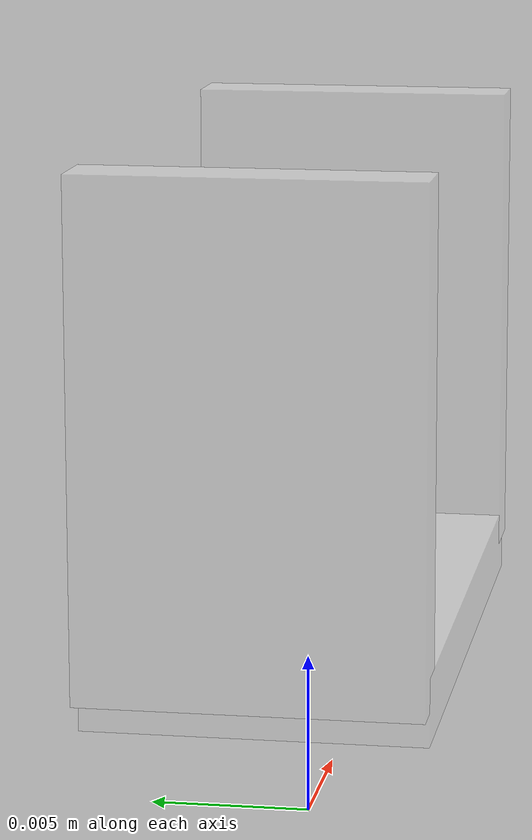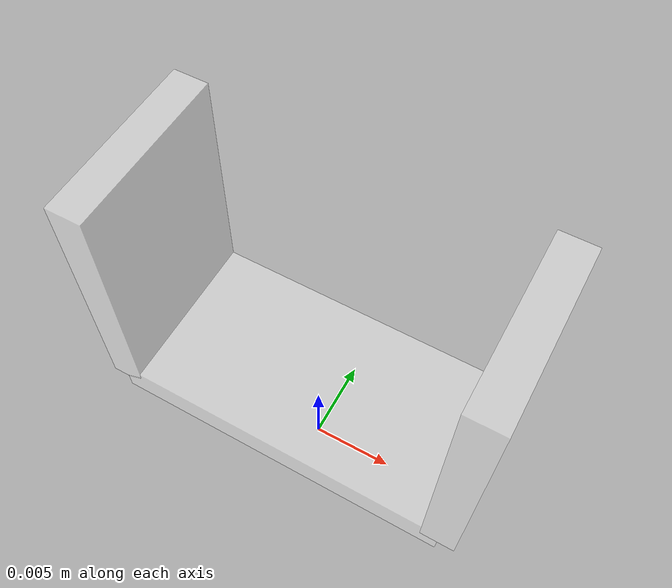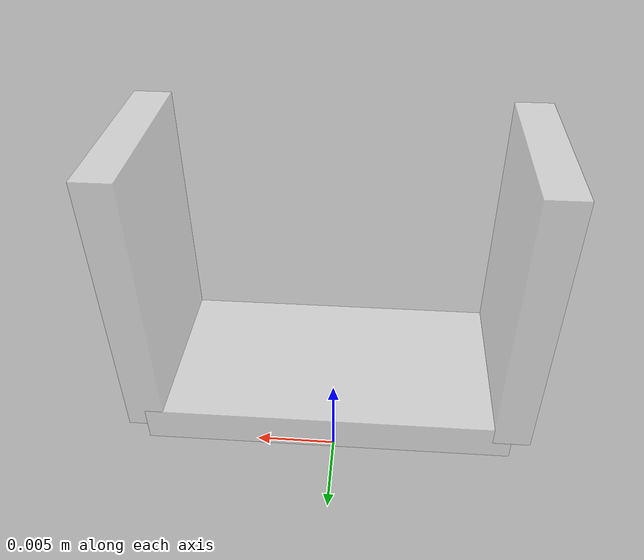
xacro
<?xml version="1.0"?>

<robot xmlns:xacro="http://www.ros.org/wiki/xacro">

  <link name="gripper_base">
    <collision>
      <origin rpy="0 0 0" xyz="0 0 0.0065"/>
      <geometry>
        <box size="0.02 0.01 0.002"/>
      </geometry>
    </collision>
    <visual>
      <origin rpy="0 0 0" xyz="0 0 0.0065"/>
      <geometry>
        <box size="0.02 0.01 0.002"/>
      </geometry>
      <material name="gray">
        <color rgba="1 1 1 0.5"/>
      </material>
    </visual>
    <inertial>
      <origin rpy="0 0 0" xyz="0 0 0"/>
      <mass value="0.2"/>
      <inertia ixx="0.00000173" ixy="0.0" ixz="0.0"
               iyy="0.00000673" iyz="0.0"
               izz="0.00000833"/>
    </inertial>
  </link>

  <link name="finger1">
    <collision>
      <origin rpy="0 0 0" xyz="0.01 0 0.014"/>
      <geometry>
        <box size="0.002 0.01 0.015"/>
      </geometry>
    </collision>
    <visual>
      <origin rpy="0 0 0" xyz="0.01 0 0.014"/>
      <geometry>
        <box size="0.002 0.01 0.015"/>
      </geometry>
      <material name="gray">
        <color rgba="1 1 1 0.5"/>
      </material>
    </visual>
    <inertial>
      <origin rpy="0 0 0" xyz="0 0 0"/>
      <mass value="0.1"/>
      <inertia ixx="0.0000027" ixy="0.0" ixz="0.0"
               iyy="0.000001908" iyz="0.0"
               izz="0.00000086"/>
    </inertial>
  </link>

  <link name="finger2">
    <collision>
      <origin rpy="0 0 0" xyz="-0.01 0 0.014"/>
      <geometry>
        <box size="0.002 0.01 0.015"/>
      </geometry>
    </collision>
    <visual>
      <origin rpy="0 0 0" xyz="-0.01 0 0.014"/>
      <geometry>
        <box size="0.002 0.01 0.015"/>
      </geometry>
      <material name="gray">
        <color rgba="1 1 1 0.5"/>
      </material>
    </visual>
    <inertial>
      <origin rpy="0 0 0" xyz="0 0 0"/>
      <mass value="0.1"/>
      <inertia ixx="0.0000027" ixy="0.0" ixz="0.0"
               iyy="0.000001908" iyz="0.0"
               izz="0.00000086"/>
    </inertial>
  </link>

  <joint name="joint6" type="prismatic">
    <parent link="gripper_base"/>
    <child link="finger1"/>
    <limit effort="10000.0" lower="0.0" upper="0.008" velocity="100.0"/>
    <origin rpy="0 0 0" xyz="0 0 0"/>
    <axis xyz="-1 0 0" />
  </joint>

  <joint name="joint7" type="prismatic">
    <parent link="gripper_base"/>
    <child link="finger2"/>
    <limit effort="10000.0" lower="0.0" upper="0.008" velocity="100.0"/>
    <origin rpy="0 0 0" xyz="0 0 0"/>
    <axis xyz="1 0 0" />
  </joint>

</robot>
